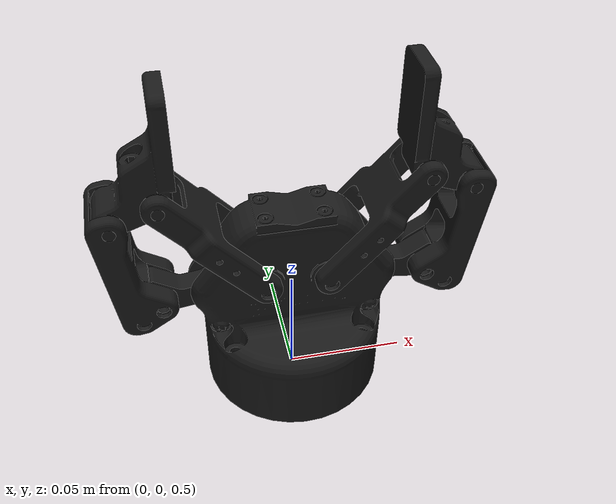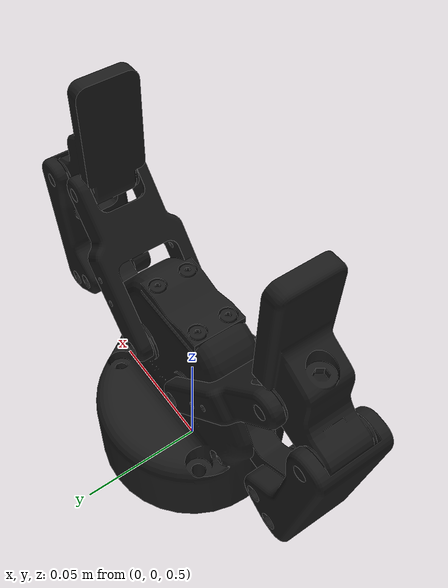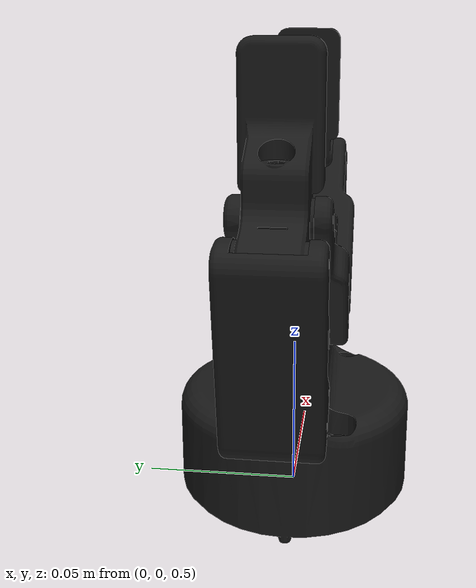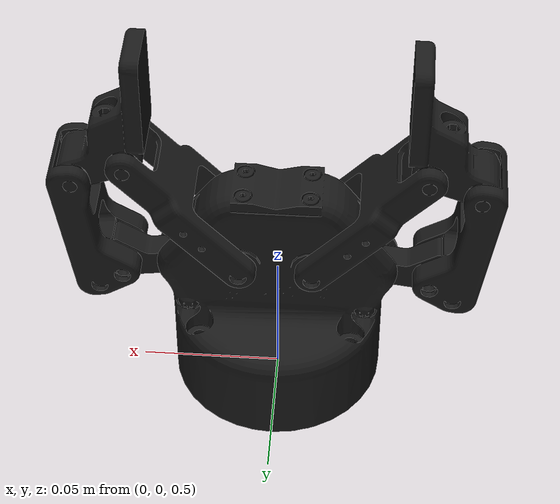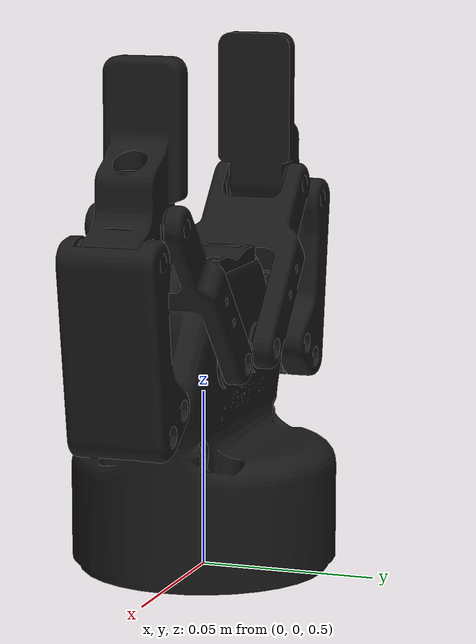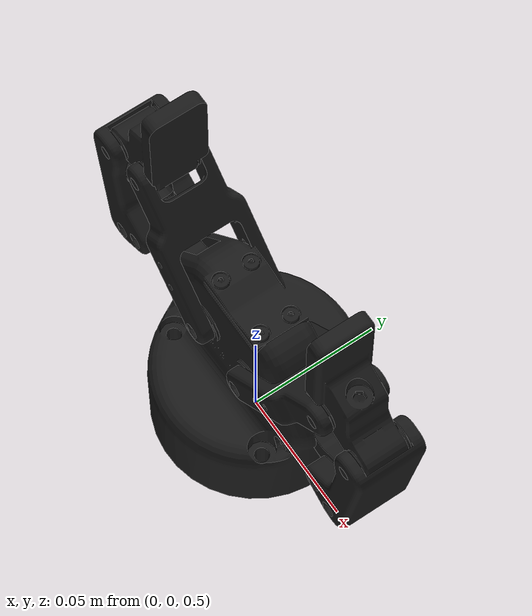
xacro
<?xml version="1.0"?>
<robot xmlns:xacro="http://ros.org/wiki/xacro" name="robotiq_85" >
  <xacro:include filename="$(find robotiq_85_gripper_description)/urdf/robotiq_85.urdf.xacro" />
  <xacro:robotiq_85 prefix="robotiq_85_" MAC="_000000000004"/>

  <link name="world" />

  <joint name="world_to_robotiq_arg2f_base" type="fixed">
    <origin rpy="0 0 0" xyz="0 0 0.5"/>
    <parent link="world"/>
    <child link="robotiq_85_robotiq_arg2f_base_link"/>
  </joint>

  <gazebo>
    <plugin filename="libgazebo_ros_joint_state_publisher.so" name="robotiq_85_joint_state">
      <ros>
        <argument>~/out:=robotiq_85_joint_states</argument>
      </ros>
      <update_rate>25</update_rate>
      <joint_name>robotiq_85_joint_finger</joint_name>
    </plugin>
  </gazebo>
</robot>

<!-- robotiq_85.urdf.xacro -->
<robot xmlns:xacro="http://ros.org/wiki/xacro">
  <xacro:macro name="robotiq_85"  params="prefix MAC">
    <link name="${prefix}robotiq_arg2f_base_link">
      <inertial>
        <origin xyz="-0.00013 -0.00011 0.03284" rpy="0 0 0" />
        <mass value="0.55938" />
        <inertia ixx="605783E-9" ixy="-579.95E-9" ixz="2765.53E-9" iyy="720148E-9" iyz="618E-9" izz="510534E-9" />
      </inertial>
      <visual>
        <origin xyz="0 0 0" rpy="0 0 0" />
        <geometry>
          <mesh filename="package://robotiq_85_gripper_description/meshes/base_gripper.dae" scale="0.001 0.001 0.001"/>
        </geometry>
        <material name="Gazebo/Black">
          <color rgba="0.1 0.1 0.1 1" />
        </material>
      </visual>
      <collision>
        <origin xyz="0 0 0" rpy="0 0 0" />
        <geometry>
          <mesh filename="package://robotiq_85_gripper_description/meshes/base_gripper.dae" scale="0.001 0.001 0.001"/>
        </geometry>
      </collision>
    </link>
    <gazebo reference="${prefix}robotiq_arg2f_base_link">
      <material>Gazebo/Black</material>
      <selfCollide>True</selfCollide>
    </gazebo>

    <link name="${prefix}left_outer_knuckle">
      <inertial>
        <origin xyz="0.01545 0 -0.00118" rpy="0 0 0" />
        <mass value="0.01252" />
        <inertia ixx="312.44E-9" ixy="0" ixz="-168.09E-9" iyy="2156E-9" iyz="0" izz="2027.51E-9" />
      </inertial>
      <visual>
        <origin xyz="0 0 0" rpy="0 0 0" />
        <geometry>
          <mesh filename="package://robotiq_85_gripper_description/meshes/2-F-85_1_l.dae" scale="0.001 0.001 0.001"/>
        </geometry>
        <material name="Gazebo/Grey">
          <color rgba="0.1 0.1 0.1 1" />
        </material>
      </visual>
      <collision>
        <origin xyz="0 0 0" rpy="0 0 0" />
        <geometry>
          <mesh filename="package://robotiq_85_gripper_description/meshes/2-F-85_1_l.dae" scale="0.001 0.001 0.001"/>
        </geometry>
      </collision>
    </link>
    <gazebo reference="${prefix}left_outer_knuckle">
      <material>Gazebo/Grey</material>
      <selfCollide>True</selfCollide>
    </gazebo>

    <link name="${prefix}right_outer_knuckle">
      <inertial>
        <origin xyz="-0.01545 0 -0.00118" rpy="0 0 0" />
        <mass value="0.01252" />
        <inertia ixx="312.44E-9" ixy="0" ixz="-168.09E-9" iyy="2156E-9" iyz="0" izz="2027.51E-9" />
      </inertial>
      <visual>
        <origin xyz="0 0 0" rpy="0 0 0" />
        <geometry>
          <mesh filename="package://robotiq_85_gripper_description/meshes/2-F-85_1_r.dae" scale="0.001 0.001 0.001"/>
        </geometry>
        <material name="Gazebo/Grey">
          <color rgba="0.1 0.1 0.1 1" />
        </material>
      </visual>
      <collision>
        <origin xyz="0 0 0" rpy="0 0 0" />
        <geometry>
          <mesh filename="package://robotiq_85_gripper_description/meshes/2-F-85_1_r.dae" scale="0.001 0.001 0.001"/>
        </geometry>
      </collision>
    </link>
    <gazebo reference="${prefix}right_outer_knuckle">
      <material>Gazebo/Grey</material>
      <selfCollide>True</selfCollide>
    </gazebo>

    <link name="${prefix}left_outer_finger">
      <inertial>
        <origin xyz="0.004 0 0.01892" rpy="0 0 0" />
        <mass value="0.03848" />
        <inertia ixx="12341E-9" ixy="0" ixz="-2152.21E-9" iyy="10617E-9" iyz="0" izz="4812.09E-9" />
      </inertial>
      <visual>
        <origin xyz="0 0 0" rpy="0 0 0" />
        <geometry>
          <mesh filename="package://robotiq_85_gripper_description/meshes/2-F-85_3_l.dae" scale="0.001 0.001 0.001"/>
        </geometry>
        <material name="Gazebo/Black">
          <color rgba="0.1 0.1 0.1 1" />
        </material>
      </visual>
      <collision>
        <origin xyz="0 0 0" rpy="0 0 0" />
        <geometry>
          <mesh filename="package://robotiq_85_gripper_description/meshes/2-F-85_3_l.dae" scale="0.001 0.001 0.001"/>
        </geometry>
      </collision>
    </link>
    <gazebo reference="${prefix}left_outer_finger">
      <material>Gazebo/Black</material>
      <selfCollide>True</selfCollide>
    </gazebo>

    <link name="${prefix}right_outer_finger">
      <inertial>
        <origin xyz="-0.004 0 0.01892" rpy="0 0 0" />
        <mass value="0.03848" />
        <inertia ixx="12341E-9" ixy="0" ixz="-2152.21E-9" iyy="10617E-9" iyz="0" izz="4812.09E-9" />
      </inertial>
      <visual>
        <origin xyz="0 0 0" rpy="0 0 0" />
        <geometry>
          <mesh filename="package://robotiq_85_gripper_description/meshes/2-F-85_3_r.dae" scale="0.001 0.001 0.001"/>
        </geometry>
        <material name="Gazebo/Black">
          <color rgba="0.1 0.1 0.1 1" />
        </material>
      </visual>
      <collision>
        <origin xyz="0 0 0" rpy="0 0 0" />
        <geometry>
          <mesh filename="package://robotiq_85_gripper_description/meshes/2-F-85_3_r.dae" scale="0.001 0.001 0.001"/>
        </geometry>
      </collision>
    </link>
    <gazebo reference="${prefix}right_outer_finger">
      <material>Gazebo/Black</material>
      <selfCollide>True</selfCollide>
    </gazebo>

    <link name="${prefix}left_inner_knuckle">
      <inertial>
        <origin xyz="0.01952 0 0.022" rpy="0 0 0" />
        <mass value="0.02731" />
        <inertia ixx="8621.3E-9" ixy="0" ixz="-3646.49E-9" iyy="8004.28E-9" iyz="0" izz="7704.42E-9" />
      </inertial>
      <visual>
        <origin xyz="0 0 0" rpy="0 0 0" />
        <geometry>
          <mesh filename="package://robotiq_85_gripper_description/meshes/2-F-85_2_l.dae" scale="0.001 0.001 0.001"/>
        </geometry>
        <material name="Gazebo/Black">
          <color rgba="0.1 0.1 0.1 1" />
        </material>
      </visual>
      <collision>
        <origin xyz="0 0 0" rpy="0 0 0" />
        <geometry>
          <mesh filename="package://robotiq_85_gripper_description/meshes/2-F-85_2_l.dae" scale="0.001 0.001 0.001"/>
        </geometry>
      </collision>
    </link>
    <gazebo reference="${prefix}left_inner_knuckle">
      <material>Gazebo/Black</material>
      <selfCollide>False</selfCollide>
    </gazebo>

    <link name="${prefix}right_inner_knuckle">
      <inertial>
        <origin xyz="-0.01952 0 0.022" rpy="0 0 0" />
        <mass value="0.02731" />
        <inertia ixx="8621.3E-9" ixy="0" ixz="3646.49E-9" iyy="8004.28E-9" iyz="0" izz="7704.42E-9" />
      </inertial>
      <visual>
        <origin xyz="0 0 0" rpy="0 0 0" />
        <geometry>
          <mesh filename="package://robotiq_85_gripper_description/meshes/2-F-85_2_r.dae" scale="0.001 0.001 0.001"/>
        </geometry>
        <material name="Gazebo/Black">
          <color rgba="0.1 0.1 0.1 1" />
        </material>
      </visual>
      <collision>
        <origin xyz="0 0 0" rpy="0 0 0" />
        <geometry>
          <mesh filename="package://robotiq_85_gripper_description/meshes/2-F-85_2_r.dae" scale="0.001 0.001 0.001"/>
        </geometry>
      </collision>
    </link>
    <gazebo reference="${prefix}right_inner_knuckle">
      <material>Gazebo/Black</material>
      <selfCollide>False</selfCollide>
    </gazebo>

    <link name="${prefix}left_inner_finger">
      <inertial>
        <origin xyz="-0.01409 0 0.01569" rpy="0 0 0" />
        <mass value="0.037" />
        <inertia ixx="12446.57E-9" ixy="0" ixz="4167.81E-9" iyy="14201.18E-9" iyz="0" izz="4979.86E-9" />
      </inertial>
      <visual>
        <origin xyz="0 0 0" rpy="0 0 0" />
        <geometry>
          <mesh filename="package://robotiq_85_gripper_description/meshes/2-F-85_4_l.dae" scale="0.001 0.001 0.001"/>
        </geometry>
        <material name="Gazebo/Black">
          <color rgba="0.1 0.1 0.1 1" />
        </material>
      </visual>
      <collision>
        <origin xyz="0 0 0" rpy="0 0 0" />
        <geometry>
          <mesh filename="package://robotiq_85_gripper_description/meshes/2-F-85_4_l.dae" scale="0.001 0.001 0.001"/>
        </geometry>
      </collision>
    </link>
    <gazebo reference="${prefix}left_inner_finger">
      <material>Gazebo/Black</material>
      <selfCollide>False</selfCollide>
    </gazebo>

    <link name="${prefix}right_inner_finger">
      <inertial>
        <origin xyz="0.01409 0 0.01569" rpy="0 0 0" />
        <mass value="0.037" />
        <inertia ixx="12446.57E-9" ixy="0" ixz="-4167.81E-9" iyy="14201.18E-9" iyz="0" izz="4979.86E-9" />
      </inertial>
      <visual>
        <origin xyz="0 0 0" rpy="0 0 0" />
        <geometry>
          <mesh filename="package://robotiq_85_gripper_description/meshes/2-F-85_4_r.dae" scale="0.001 0.001 0.001"/>
        </geometry>
        <material name="Gazebo/Black">
          <color rgba="0.1 0.1 0.1 1" />
        </material>
      </visual>
      <collision>
        <origin xyz="0 0 0" rpy="0 0 0" />
        <geometry>
          <mesh filename="package://robotiq_85_gripper_description/meshes/2-F-85_4_r.dae" scale="0.001 0.001 0.001"/>
        </geometry>
      </collision>
    </link>
    <gazebo reference="${prefix}right_inner_finger">
      <material>Gazebo/Black</material>
      <selfCollide>False</selfCollide>
    </gazebo>

    <joint name="${prefix}robotiq_arg2f_base_link_to_${prefix}left_outer_knuckle" type="revolute">
      <origin xyz="0.0306 0 0.05466" rpy="0 0 0" />
      <parent link="${prefix}robotiq_arg2f_base_link" />
      <child link="${prefix}left_outer_knuckle" />
      <axis xyz="0 -1 0" />
      <limit lower="0" upper="0.82589" velocity="3.87" effort="21.03" />
      <mimic joint="${prefix}joint_finger" multiplier="1" offset="0"/>
    </joint>

    <joint name="${prefix}joint_finger" type="revolute">
      <origin xyz="-0.0306 0 0.05466" rpy="0 0 0" />
      <parent link="${prefix}robotiq_arg2f_base_link" />
      <child link="${prefix}right_outer_knuckle" />
      <axis xyz="0 1 0" />
      <limit lower="0" upper="0.82589" velocity="3.87" effort="21.03" />
    </joint>

    <joint name="${prefix}robotiq_arg2f_base_link_to_${prefix}left_inner_knuckle" type="revolute">
      <origin xyz="0.0127 0 0.06118" rpy="0 0 0" />
      <parent link="${prefix}robotiq_arg2f_base_link" />
      <child link="${prefix}left_inner_knuckle" />
      <axis xyz="0 -1 0" />
      <limit lower="0" upper="0.82589" velocity="3.87" effort="21.03" />
      <mimic joint="${prefix}joint_finger" multiplier="1" offset="0"/>
    </joint>

    <joint name="${prefix}robotiq_arg2f_base_link_to_${prefix}right_inner_knuckle" type="revolute">
      <origin xyz="-0.0127 0 0.06118" rpy="0 0 0" />
      <parent link="${prefix}robotiq_arg2f_base_link" />
      <child link="${prefix}right_inner_knuckle" />
      <axis xyz="0 1 0" />
      <limit lower="0" upper="0.82589" velocity="3.87" effort="21.03" />
      <mimic joint="${prefix}joint_finger" multiplier="1" offset="0"/>
    </joint>

    <joint name="${prefix}left_outer_finger_to_inner" type="revolute">
      <origin xyz="0.00678 0 0.04703" rpy="0 0 0" />
      <parent link="${prefix}left_outer_finger" />
      <child link="${prefix}left_inner_finger" />
      <axis xyz="0 1 0" />
      <limit lower="0" upper="0.82589" velocity="3.87" effort="21.03" />
      <mimic joint="${prefix}joint_finger" multiplier="1" offset="0"/>
    </joint>

    <joint name="${prefix}right_outer_finger_to_inner" type="revolute">
      <origin xyz="-0.00678 0 0.04703" rpy="0 0 0" />
      <parent link="${prefix}right_outer_finger" />
      <child link="${prefix}right_inner_finger" />
      <axis xyz="0 -1 0" />
      <limit lower="0" upper="0.82589" velocity="3.87" effort="21.03" />
      <mimic joint="${prefix}joint_finger" multiplier="1" offset="0"/>
    </joint>

    <joint name="${prefix}left_outer_knuckle_to_finger" type="fixed">
      <origin xyz="0.03142 0 -0.00453" rpy="0 0 0" />
      <parent link="${prefix}left_outer_knuckle" />
      <child link="${prefix}left_outer_finger" />
    </joint>

    <joint name="${prefix}right_outer_knuckle_to_finger" type="fixed">
      <origin xyz="-0.03142 0 -0.00453" rpy="0 0 0" />
      <parent link="${prefix}right_outer_knuckle" />
      <child link="${prefix}right_outer_finger" />
    </joint>

    <gazebo>
      <joint name="${prefix}left_inner_knuckle_to_finger" type="revolute">
        <pose frame="">-0.0179 0 0.00652 0 0 0</pose>
        <parent>${prefix}left_inner_knuckle</parent>
        <child>${prefix}left_inner_finger</child>
        <axis>
          <xyz>0 1 0</xyz>
          <limit>
            <lower>0</lower>
            <upper>0.82589</upper>
            <velocity>3.87</velocity>
            <effort>21.03</effort>
          </limit>
        </axis>
      </joint>

      <joint name="${prefix}right_inner_knuckle_to_finger" type="revolute">
        <pose frame="">0.0179 0 0.00652 0 0 0</pose>
        <parent>${prefix}right_inner_knuckle</parent>
        <child>${prefix}right_inner_finger</child>
        <axis>
          <xyz>0 -1 0</xyz>
          <limit>
            <lower>0</lower>
            <upper>0.82589</upper>
            <velocity>3.87</velocity>
            <effort>21.03</effort>
          </limit>
        </axis>
      </joint>

      <plugin filename="librobotiq_gripper_gazebo_plugin.so" name="hrim_actuator_gripper${MAC}">
        <kp>10</kp>
        <ki>10</ki>
        <kd>0.1</kd>
        <min_velocity>20</min_velocity>
        <max_velocity>150</max_velocity>
        <radius>100</radius>
        <joint>${prefix}robotiq_arg2f_base_link_to_${prefix}left_inner_knuckle</joint>
        <joint>${prefix}robotiq_arg2f_base_link_to_${prefix}left_outer_knuckle</joint>
        <joint>${prefix}robotiq_arg2f_base_link_to_${prefix}right_inner_knuckle</joint>
        <joint>${prefix}joint_finger</joint>
      </plugin>
    </gazebo>
  </xacro:macro>
</robot>
